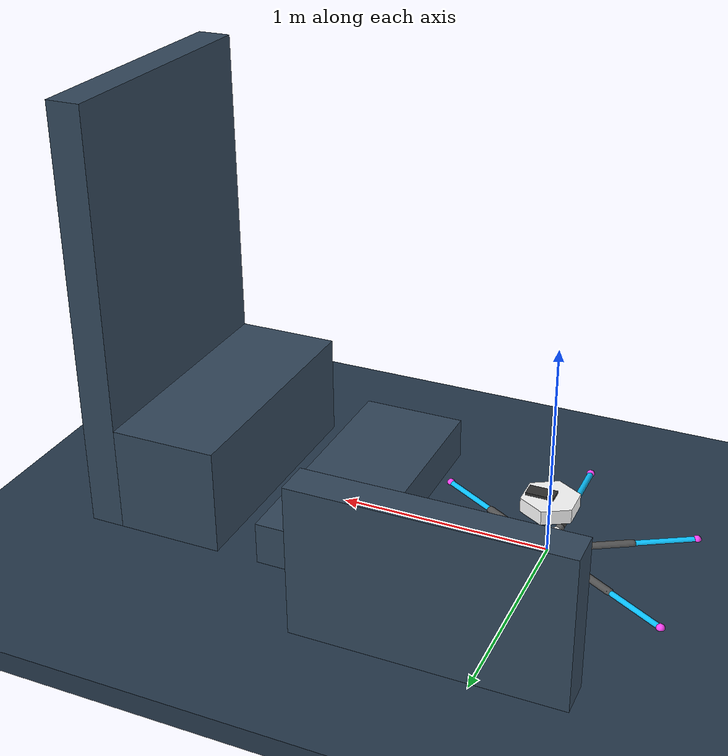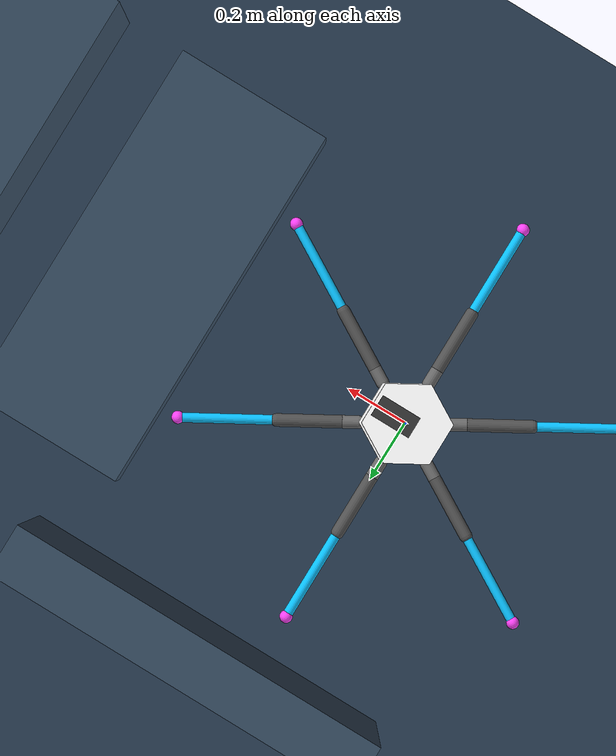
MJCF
<mujoco model="robot">
  <compiler angle="radian" autolimits="true"/>
  <default>
    <geom contype="0" conaffinity="0"/>
    <joint type="hinge"/>
    <default class="link"><geom type="capsule" size="0.02"/></default>
    <default class="foot"><geom type="sphere" size="0.02" material="foot"/></default>
    <default class="base"><geom type="box" material="base"/></default>
    <default class="j0"><joint axis="0 0 1" range="-1.57079637 1.57079637"/></default>
    <default class="j1"><joint axis="0 1 0" range="-2.61799383 2.61799383"/></default>
    <default class="j2"><joint axis="0 1 0" range="-2.61799383 2.61799383"/></default>
  </default>
  <asset>
    <material name="base"  rgba="1 1 1 1"/>
    <material name="coxa"  rgba="0.42 0.42 0.42 1"/>
    <material name="femur" rgba="0.32 0.32 0.32 1"/>
    <material name="tibia" rgba="0.039216 0.760784 1 1"/>
    <material name="foot"  rgba="1 0.258824 0.976471 1"/>
    <material name="terrain" rgba="0.2 0.28 0.36 1"/>
    <texture type="skybox" builtin="gradient" rgb1="0.3 0.5 0.7" rgb2="0 0 0" width="512" height="512"/>
    <texture name="grid" type="2d" builtin="checker" rgb1="0.2 0.3 0.4" rgb2="0.1 0.15 0.2" width="512" height="512"/>
    <material name="grid" texture="grid" texrepeat="16.6667 16.6667"/>
    <mesh name="hex" vertex="0.121244 0.07 -0.035 8.57253e-18 0.14 -0.035 -0.121244 0.07 -0.035 -0.121244 -0.07 -0.035 -2.57176e-17 -0.14 -0.035 0.121244 -0.07 -0.035 0.121244 0.07 0.035 8.57253e-18 0.14 0.035 -0.121244 0.07 0.035 -0.121244 -0.07 0.035 -2.57176e-17 -0.14 0.035 0.121244 -0.07 0.035"/>
    <mesh name="hex_ghost" vertex="0.117606 0.0679 -0.03395 8.31535e-18 0.1358 -0.03395 -0.117606 0.0679 -0.03395 -0.117606 -0.0679 -0.03395 -2.49461e-17 -0.1358 -0.03395 0.117606 -0.0679 -0.03395 0.117606 0.0679 0.03395 8.31535e-18 0.1358 0.03395 -0.117606 0.0679 0.03395 -0.117606 -0.0679 0.03395 -2.49461e-17 -0.1358 0.03395 0.117606 -0.0679 0.03395"/>
  </asset>
  <worldbody>
    <body name="base" pos="0 0 0">
      <freejoint name="root"/>
      <geom name="body_nose" type="box" pos="0.0424352 0 0.041" size="0.066684 0.035 0.006" rgba="0.2 0.2 0.2 1"/>
      <geom class="base" name="base" type="mesh" mesh="hex"/>
<body name="leg0_0" pos="0.121243551 0.0700000003 0" quat="0.965925813 0 0 0.258819103">
  <joint class="j0" name="leg0_j0"/>
  <geom class="link" fromto="0 0 0 0.0500000007 0 0" material="coxa"/>
<body name="leg0_1" pos="0.0500000007 0 0" quat="1 0 0 0">
  <joint class="j1" name="leg0_j1"/>
  <geom class="link" fromto="0 0 0 0.200000003 0 0" material="femur"/>
<body name="leg0_2" pos="0.200000003 0 0" quat="1 0 0 0">
  <joint class="j2" name="leg0_j2"/>
  <geom class="link" fromto="0 0 0 0.300000012 0 0" material="tibia" size="0.015"/>
<body name="foot0" pos="0.300000012 0 0" quat="1 0 0 0">
  <geom class="foot" name="foot0"/>
</body>
</body></body></body>
<body name="leg1_0" pos="-6.11959416e-09 0.140000001 0" quat="0.707106829 0 0 0.707106769">
  <joint class="j0" name="leg1_j0"/>
  <geom class="link" fromto="0 0 0 0.0500000007 0 0" material="coxa"/>
<body name="leg1_1" pos="0.0500000007 0 0" quat="1 0 0 0">
  <joint class="j1" name="leg1_j1"/>
  <geom class="link" fromto="0 0 0 0.200000003 0 0" material="femur"/>
<body name="leg1_2" pos="0.200000003 0 0" quat="1 0 0 0">
  <joint class="j2" name="leg1_j2"/>
  <geom class="link" fromto="0 0 0 0.300000012 0 0" material="tibia" size="0.015"/>
<body name="foot1" pos="0.300000012 0 0" quat="1 0 0 0">
  <geom class="foot" name="foot1"/>
</body>
</body></body></body>
<body name="leg2_0" pos="-0.121243551 0.0700000077 0" quat="0.258819193 0 0 0.965925872">
  <joint class="j0" name="leg2_j0"/>
  <geom class="link" fromto="0 0 0 0.0500000007 0 0" material="coxa"/>
<body name="leg2_1" pos="0.0500000007 0 0" quat="1 0 0 0">
  <joint class="j1" name="leg2_j1"/>
  <geom class="link" fromto="0 0 0 0.200000003 0 0" material="femur"/>
<body name="leg2_2" pos="0.200000003 0 0" quat="1 0 0 0">
  <joint class="j2" name="leg2_j2"/>
  <geom class="link" fromto="0 0 0 0.300000012 0 0" material="tibia" size="0.015"/>
<body name="foot2" pos="0.300000012 0 0" quat="1 0 0 0">
  <geom class="foot" name="foot2"/>
</body>
</body></body></body>
<body name="leg3_0" pos="-0.121243551 -0.0699999928 0" quat="0.258818954 0 0 -0.965925872">
  <joint class="j0" name="leg3_j0"/>
  <geom class="link" fromto="0 0 0 0.0500000007 0 0" material="coxa"/>
<body name="leg3_1" pos="0.0500000007 0 0" quat="1 0 0 0">
  <joint class="j1" name="leg3_j1"/>
  <geom class="link" fromto="0 0 0 0.200000003 0 0" material="femur"/>
<body name="leg3_2" pos="0.200000003 0 0" quat="1 0 0 0">
  <joint class="j2" name="leg3_j2"/>
  <geom class="link" fromto="0 0 0 0.300000012 0 0" material="tibia" size="0.015"/>
<body name="foot3" pos="0.300000012 0 0" quat="1 0 0 0">
  <geom class="foot" name="foot3"/>
</body>
</body></body></body>
<body name="leg4_0" pos="1.66948333e-09 -0.140000001 0" quat="0.707106829 0 0 -0.707106769">
  <joint class="j0" name="leg4_j0"/>
  <geom class="link" fromto="0 0 0 0.0500000007 0 0" material="coxa"/>
<body name="leg4_1" pos="0.0500000007 0 0" quat="1 0 0 0">
  <joint class="j1" name="leg4_j1"/>
  <geom class="link" fromto="0 0 0 0.200000003 0 0" material="femur"/>
<body name="leg4_2" pos="0.200000003 0 0" quat="1 0 0 0">
  <joint class="j2" name="leg4_j2"/>
  <geom class="link" fromto="0 0 0 0.300000012 0 0" material="tibia" size="0.015"/>
<body name="foot4" pos="0.300000012 0 0" quat="1 0 0 0">
  <geom class="foot" name="foot4"/>
</body>
</body></body></body>
<body name="leg5_0" pos="0.121243544 -0.0700000226 0" quat="0.965925813 0 0 -0.258819103">
  <joint class="j0" name="leg5_j0"/>
  <geom class="link" fromto="0 0 0 0.0500000007 0 0" material="coxa"/>
<body name="leg5_1" pos="0.0500000007 0 0" quat="1 0 0 0">
  <joint class="j1" name="leg5_j1"/>
  <geom class="link" fromto="0 0 0 0.200000003 0 0" material="femur"/>
<body name="leg5_2" pos="0.200000003 0 0" quat="1 0 0 0">
  <joint class="j2" name="leg5_j2"/>
  <geom class="link" fromto="0 0 0 0.300000012 0 0" material="tibia" size="0.015"/>
<body name="foot5" pos="0.300000012 0 0" quat="1 0 0 0">
  <geom class="foot" name="foot5"/>
</body>
</body></body></body>
    </body>
    <geom name="ground0" type="box" pos="0 0 -0.05" size="5 5 0.05" material="grid"/>
    <geom name="terrain0" type="box" pos="0.9 0 0.1" size="0.25 0.6 0.1" material="terrain"/>
    <geom name="terrain1" type="box" pos="1.6 0 0.25" size="0.25 0.6 0.25" material="terrain"/>
    <geom name="terrain2" type="box" pos="0.2 0.9 0.35" size="0.6 0.08 0.35" material="terrain"/>
    <geom name="terrain3" type="box" pos="1.93 0 1" size="0.08 0.6 1" material="terrain"/>
    <light pos="0 0 3" dir="0 0 -1" diffuse="0.8 0.8 0.8"/>
    <light pos="1.2 0 3.5" dir="0.65 0 -2.5" diffuse="0.6 0.6 0.6"/>
    <body name="target" mocap="true" pos="0 0 0.25">
      <geom type="mesh" mesh="hex_ghost" material="base"/>
      <geom type="box" pos="0.0411622 0 0.03995" size="0.0646834 0.03395 0.006" rgba="0.2 0.2 0.2 1"/>
    </body>
  </worldbody>
</mujoco>
